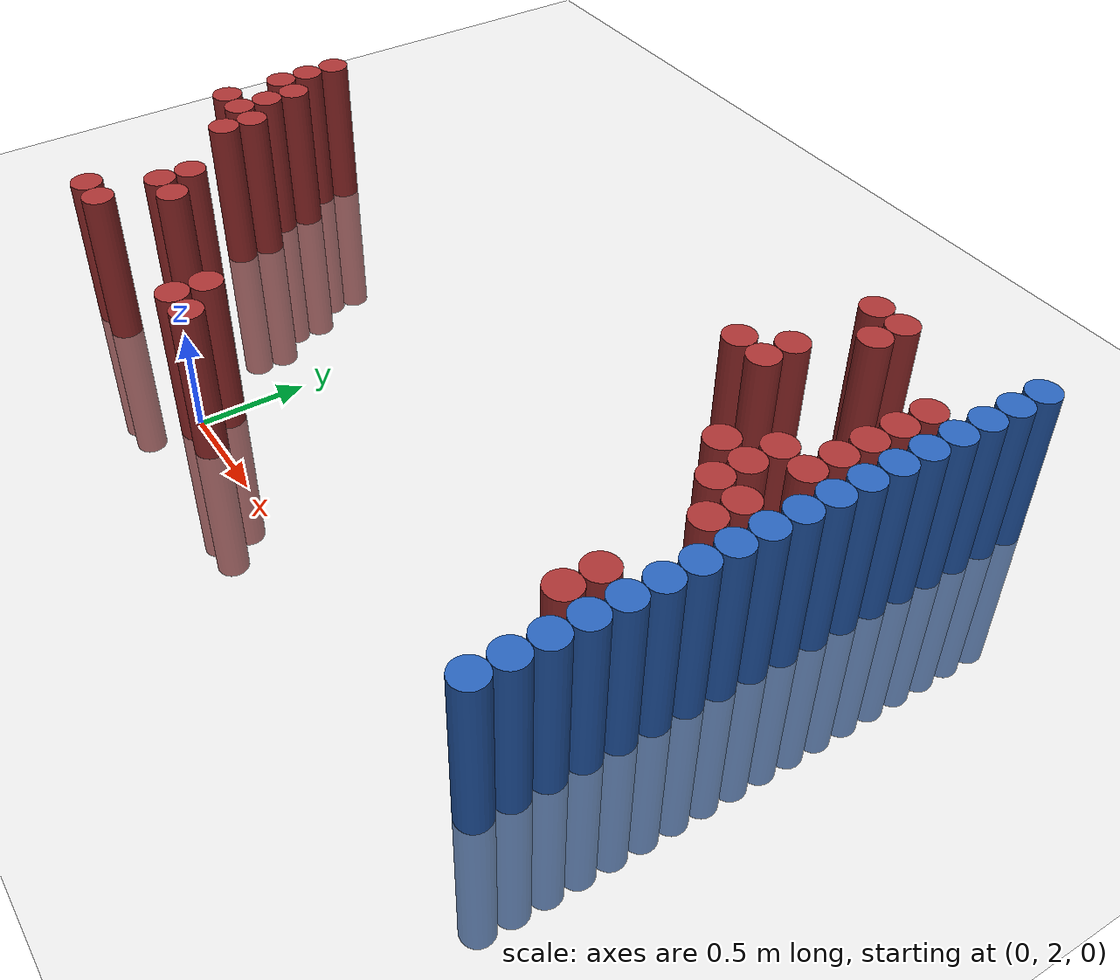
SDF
<sdf version="1.6">
 <world name="default">
  <model name="ground_plane">
   <static>1</static>
   <link name="link">
    <collision name="collision">
     <geometry><plane><normal>0 0 1</normal><size>100 100</size></plane></geometry>
     <surface><friction><ode><mu>100</mu><mu2>50</mu2></ode></friction></surface>
    </collision>
    <visual name="visual">
     <cast_shadows>0</cast_shadows>
     <geometry><plane><normal>0 0 1</normal><size>100 100</size></plane></geometry>
     <material>
      <script><uri>file://media/materials/scripts/gazebo.material</uri><name>Gazebo/Grey</name></script>
     </material>
    </visual>
   </link>
  </model>
  <model name="unit_cylinder_152">
   <static>1</static>
   <pose>-1.475000 2.875000 0.000000 0.000000 0.000000 0.000000</pose>
   <link name="link">
    <inertial>
     <mass>1</mass>
     <inertia><ixx>0.145833</ixx><ixy>0</ixy><ixz>0</ixz><iyy>0.145833</iyy><iyz>0</iyz><izz>0.125</izz></inertia>
    </inertial>
    <collision name="collision">
     <geometry><cylinder><radius>0.075000</radius><length>1.5</length></cylinder></geometry>
    </collision>
    <visual name="visual">
     <geometry><cylinder><radius>0.075000</radius><length>1.5</length></cylinder></geometry>
     <material>
      <ambient>0.648000 0.192000 0.192000 1</ambient>
      <diffuse>0.648000 0.192000 0.192000 1</diffuse>
     </material>
     <material>
      <script><name>Gazebo/Grey</name><uri>file://media/materials/scripts/gazebo.material</uri></script>
     </material>
    </visual>
   </link>
  </model>
  <model name="unit_cylinder_153">
   <static>1</static>
   <pose>-1.475000 3.175000 0.000000 0.000000 0.000000 0.000000</pose>
   <link name="link">
    <inertial>
     <mass>1</mass>
     <inertia><ixx>0.145833</ixx><ixy>0</ixy><ixz>0</ixz><iyy>0.145833</iyy><iyz>0</iyz><izz>0.125</izz></inertia>
    </inertial>
    <collision name="collision">
     <geometry><cylinder><radius>0.075000</radius><length>1.5</length></cylinder></geometry>
    </collision>
    <visual name="visual">
     <geometry><cylinder><radius>0.075000</radius><length>1.5</length></cylinder></geometry>
     <material>
      <ambient>0.648000 0.192000 0.192000 1</ambient>
      <diffuse>0.648000 0.192000 0.192000 1</diffuse>
     </material>
     <material>
      <script><name>Gazebo/Grey</name><uri>file://media/materials/scripts/gazebo.material</uri></script>
     </material>
    </visual>
   </link>
  </model>
  <model name="unit_cylinder_154">
   <static>1</static>
   <pose>-1.475000 3.325000 0.000000 0.000000 0.000000 0.000000</pose>
   <link name="link">
    <inertial>
     <mass>1</mass>
     <inertia><ixx>0.145833</ixx><ixy>0</ixy><ixz>0</ixz><iyy>0.145833</iyy><iyz>0</iyz><izz>0.125</izz></inertia>
    </inertial>
    <collision name="collision">
     <geometry><cylinder><radius>0.075000</radius><length>1.5</length></cylinder></geometry>
    </collision>
    <visual name="visual">
     <geometry><cylinder><radius>0.075000</radius><length>1.5</length></cylinder></geometry>
     <material>
      <ambient>0.648000 0.192000 0.192000 1</ambient>
      <diffuse>0.648000 0.192000 0.192000 1</diffuse>
     </material>
     <material>
      <script><name>Gazebo/Grey</name><uri>file://media/materials/scripts/gazebo.material</uri></script>
     </material>
    </visual>
   </link>
  </model>
  <model name="unit_cylinder_155">
   <static>1</static>
   <pose>-1.475000 3.475000 0.000000 0.000000 0.000000 0.000000</pose>
   <link name="link">
    <inertial>
     <mass>1</mass>
     <inertia><ixx>0.145833</ixx><ixy>0</ixy><ixz>0</ixz><iyy>0.145833</iyy><iyz>0</iyz><izz>0.125</izz></inertia>
    </inertial>
    <collision name="collision">
     <geometry><cylinder><radius>0.075000</radius><length>1.5</length></cylinder></geometry>
    </collision>
    <visual name="visual">
     <geometry><cylinder><radius>0.075000</radius><length>1.5</length></cylinder></geometry>
     <material>
      <ambient>0.648000 0.192000 0.192000 1</ambient>
      <diffuse>0.648000 0.192000 0.192000 1</diffuse>
     </material>
     <material>
      <script><name>Gazebo/Grey</name><uri>file://media/materials/scripts/gazebo.material</uri></script>
     </material>
    </visual>
   </link>
  </model>
  <model name="unit_cylinder_158">
   <static>1</static>
   <pose>-1.325000 2.875000 0.000000 0.000000 0.000000 0.000000</pose>
   <link name="link">
    <inertial>
     <mass>1</mass>
     <inertia><ixx>0.145833</ixx><ixy>0</ixy><ixz>0</ixz><iyy>0.145833</iyy><iyz>0</iyz><izz>0.125</izz></inertia>
    </inertial>
    <collision name="collision">
     <geometry><cylinder><radius>0.075000</radius><length>1.5</length></cylinder></geometry>
    </collision>
    <visual name="visual">
     <geometry><cylinder><radius>0.075000</radius><length>1.5</length></cylinder></geometry>
     <material>
      <ambient>0.648000 0.192000 0.192000 1</ambient>
      <diffuse>0.648000 0.192000 0.192000 1</diffuse>
     </material>
     <material>
      <script><name>Gazebo/Grey</name><uri>file://media/materials/scripts/gazebo.material</uri></script>
     </material>
    </visual>
   </link>
  </model>
  <model name="unit_cylinder_159">
   <static>1</static>
   <pose>-1.325000 3.025000 0.000000 0.000000 0.000000 0.000000</pose>
   <link name="link">
    <inertial>
     <mass>1</mass>
     <inertia><ixx>0.145833</ixx><ixy>0</ixy><ixz>0</ixz><iyy>0.145833</iyy><iyz>0</iyz><izz>0.125</izz></inertia>
    </inertial>
    <collision name="collision">
     <geometry><cylinder><radius>0.075000</radius><length>1.5</length></cylinder></geometry>
    </collision>
    <visual name="visual">
     <geometry><cylinder><radius>0.075000</radius><length>1.5</length></cylinder></geometry>
     <material>
      <ambient>0.648000 0.192000 0.192000 1</ambient>
      <diffuse>0.648000 0.192000 0.192000 1</diffuse>
     </material>
     <material>
      <script><name>Gazebo/Grey</name><uri>file://media/materials/scripts/gazebo.material</uri></script>
     </material>
    </visual>
   </link>
  </model>
  <model name="unit_cylinder_160">
   <static>1</static>
   <pose>-1.325000 3.175000 0.000000 0.000000 0.000000 0.000000</pose>
   <link name="link">
    <inertial>
     <mass>1</mass>
     <inertia><ixx>0.145833</ixx><ixy>0</ixy><ixz>0</ixz><iyy>0.145833</iyy><iyz>0</iyz><izz>0.125</izz></inertia>
    </inertial>
    <collision name="collision">
     <geometry><cylinder><radius>0.075000</radius><length>1.5</length></cylinder></geometry>
    </collision>
    <visual name="visual">
     <geometry><cylinder><radius>0.075000</radius><length>1.5</length></cylinder></geometry>
     <material>
      <ambient>0.648000 0.192000 0.192000 1</ambient>
      <diffuse>0.648000 0.192000 0.192000 1</diffuse>
     </material>
     <material>
      <script><name>Gazebo/Grey</name><uri>file://media/materials/scripts/gazebo.material</uri></script>
     </material>
    </visual>
   </link>
  </model>
  <model name="unit_cylinder_164">
   <static>1</static>
   <pose>-1.175000 2.725000 0.000000 0.000000 0.000000 0.000000</pose>
   <link name="link">
    <inertial>
     <mass>1</mass>
     <inertia><ixx>0.145833</ixx><ixy>0</ixy><ixz>0</ixz><iyy>0.145833</iyy><iyz>0</iyz><izz>0.125</izz></inertia>
    </inertial>
    <collision name="collision">
     <geometry><cylinder><radius>0.075000</radius><length>1.5</length></cylinder></geometry>
    </collision>
    <visual name="visual">
     <geometry><cylinder><radius>0.075000</radius><length>1.5</length></cylinder></geometry>
     <material>
      <ambient>0.648000 0.192000 0.192000 1</ambient>
      <diffuse>0.648000 0.192000 0.192000 1</diffuse>
     </material>
     <material>
      <script><name>Gazebo/Grey</name><uri>file://media/materials/scripts/gazebo.material</uri></script>
     </material>
    </visual>
   </link>
  </model>
  <model name="unit_cylinder_165">
   <static>1</static>
   <pose>-1.175000 2.875000 0.000000 0.000000 0.000000 0.000000</pose>
   <link name="link">
    <inertial>
     <mass>1</mass>
     <inertia><ixx>0.145833</ixx><ixy>0</ixy><ixz>0</ixz><iyy>0.145833</iyy><iyz>0</iyz><izz>0.125</izz></inertia>
    </inertial>
    <collision name="collision">
     <geometry><cylinder><radius>0.075000</radius><length>1.5</length></cylinder></geometry>
    </collision>
    <visual name="visual">
     <geometry><cylinder><radius>0.075000</radius><length>1.5</length></cylinder></geometry>
     <material>
      <ambient>0.648000 0.192000 0.192000 1</ambient>
      <diffuse>0.648000 0.192000 0.192000 1</diffuse>
     </material>
     <material>
      <script><name>Gazebo/Grey</name><uri>file://media/materials/scripts/gazebo.material</uri></script>
     </material>
    </visual>
   </link>
  </model>
  <model name="unit_cylinder_166">
   <static>1</static>
   <pose>-1.025000 1.975000 0.000000 0.000000 0.000000 0.000000</pose>
   <link name="link">
    <inertial>
     <mass>1</mass>
     <inertia><ixx>0.145833</ixx><ixy>0</ixy><ixz>0</ixz><iyy>0.145833</iyy><iyz>0</iyz><izz>0.125</izz></inertia>
    </inertial>
    <collision name="collision">
     <geometry><cylinder><radius>0.075000</radius><length>1.5</length></cylinder></geometry>
    </collision>
    <visual name="visual">
     <geometry><cylinder><radius>0.075000</radius><length>1.5</length></cylinder></geometry>
     <material>
      <ambient>0.648000 0.192000 0.192000 1</ambient>
      <diffuse>0.648000 0.192000 0.192000 1</diffuse>
     </material>
     <material>
      <script><name>Gazebo/Grey</name><uri>file://media/materials/scripts/gazebo.material</uri></script>
     </material>
    </visual>
   </link>
  </model>
  <model name="unit_cylinder_174">
   <static>1</static>
   <pose>-0.875000 1.975000 0.000000 0.000000 0.000000 0.000000</pose>
   <link name="link">
    <inertial>
     <mass>1</mass>
     <inertia><ixx>0.145833</ixx><ixy>0</ixy><ixz>0</ixz><iyy>0.145833</iyy><iyz>0</iyz><izz>0.125</izz></inertia>
    </inertial>
    <collision name="collision">
     <geometry><cylinder><radius>0.075000</radius><length>1.5</length></cylinder></geometry>
    </collision>
    <visual name="visual">
     <geometry><cylinder><radius>0.075000</radius><length>1.5</length></cylinder></geometry>
     <material>
      <ambient>0.648000 0.192000 0.192000 1</ambient>
      <diffuse>0.648000 0.192000 0.192000 1</diffuse>
     </material>
     <material>
      <script><name>Gazebo/Grey</name><uri>file://media/materials/scripts/gazebo.material</uri></script>
     </material>
    </visual>
   </link>
  </model>
  <model name="unit_cylinder_175">
   <static>1</static>
   <pose>-0.875000 2.275000 0.000000 0.000000 0.000000 0.000000</pose>
   <link name="link">
    <inertial>
     <mass>1</mass>
     <inertia><ixx>0.145833</ixx><ixy>0</ixy><ixz>0</ixz><iyy>0.145833</iyy><iyz>0</iyz><izz>0.125</izz></inertia>
    </inertial>
    <collision name="collision">
     <geometry><cylinder><radius>0.075000</radius><length>1.5</length></cylinder></geometry>
    </collision>
    <visual name="visual">
     <geometry><cylinder><radius>0.075000</radius><length>1.5</length></cylinder></geometry>
     <material>
      <ambient>0.648000 0.192000 0.192000 1</ambient>
      <diffuse>0.648000 0.192000 0.192000 1</diffuse>
     </material>
     <material>
      <script><name>Gazebo/Grey</name><uri>file://media/materials/scripts/gazebo.material</uri></script>
     </material>
    </visual>
   </link>
  </model>
  <model name="unit_cylinder_176">
   <static>1</static>
   <pose>-0.875000 2.425000 0.000000 0.000000 0.000000 0.000000</pose>
   <link name="link">
    <inertial>
     <mass>1</mass>
     <inertia><ixx>0.145833</ixx><ixy>0</ixy><ixz>0</ixz><iyy>0.145833</iyy><iyz>0</iyz><izz>0.125</izz></inertia>
    </inertial>
    <collision name="collision">
     <geometry><cylinder><radius>0.075000</radius><length>1.5</length></cylinder></geometry>
    </collision>
    <visual name="visual">
     <geometry><cylinder><radius>0.075000</radius><length>1.5</length></cylinder></geometry>
     <material>
      <ambient>0.648000 0.192000 0.192000 1</ambient>
      <diffuse>0.648000 0.192000 0.192000 1</diffuse>
     </material>
     <material>
      <script><name>Gazebo/Grey</name><uri>file://media/materials/scripts/gazebo.material</uri></script>
     </material>
    </visual>
   </link>
  </model>
  <model name="unit_cylinder_184">
   <static>1</static>
   <pose>-0.725000 2.275000 0.000000 0.000000 0.000000 0.000000</pose>
   <link name="link">
    <inertial>
     <mass>1</mass>
     <inertia><ixx>0.145833</ixx><ixy>0</ixy><ixz>0</ixz><iyy>0.145833</iyy><iyz>0</iyz><izz>0.125</izz></inertia>
    </inertial>
    <collision name="collision">
     <geometry><cylinder><radius>0.075000</radius><length>1.5</length></cylinder></geometry>
    </collision>
    <visual name="visual">
     <geometry><cylinder><radius>0.075000</radius><length>1.5</length></cylinder></geometry>
     <material>
      <ambient>0.648000 0.192000 0.192000 1</ambient>
      <diffuse>0.648000 0.192000 0.192000 1</diffuse>
     </material>
     <material>
      <script><name>Gazebo/Grey</name><uri>file://media/materials/scripts/gazebo.material</uri></script>
     </material>
    </visual>
   </link>
  </model>
  <model name="unit_cylinder_190">
   <static>1</static>
   <pose>0.025000 1.975000 0.000000 0.000000 0.000000 0.000000</pose>
   <link name="link">
    <inertial>
     <mass>1</mass>
     <inertia><ixx>0.145833</ixx><ixy>0</ixy><ixz>0</ixz><iyy>0.145833</iyy><iyz>0</iyz><izz>0.125</izz></inertia>
    </inertial>
    <collision name="collision">
     <geometry><cylinder><radius>0.075000</radius><length>1.5</length></cylinder></geometry>
    </collision>
    <visual name="visual">
     <geometry><cylinder><radius>0.075000</radius><length>1.5</length></cylinder></geometry>
     <material>
      <ambient>0.648000 0.192000 0.192000 1</ambient>
      <diffuse>0.648000 0.192000 0.192000 1</diffuse>
     </material>
     <material>
      <script><name>Gazebo/Grey</name><uri>file://media/materials/scripts/gazebo.material</uri></script>
     </material>
    </visual>
   </link>
  </model>
  <model name="unit_cylinder_191">
   <static>1</static>
   <pose>0.025000 2.125000 0.000000 0.000000 0.000000 0.000000</pose>
   <link name="link">
    <inertial>
     <mass>1</mass>
     <inertia><ixx>0.145833</ixx><ixy>0</ixy><ixz>0</ixz><iyy>0.145833</iyy><iyz>0</iyz><izz>0.125</izz></inertia>
    </inertial>
    <collision name="collision">
     <geometry><cylinder><radius>0.075000</radius><length>1.5</length></cylinder></geometry>
    </collision>
    <visual name="visual">
     <geometry><cylinder><radius>0.075000</radius><length>1.5</length></cylinder></geometry>
     <material>
      <ambient>0.648000 0.192000 0.192000 1</ambient>
      <diffuse>0.648000 0.192000 0.192000 1</diffuse>
     </material>
     <material>
      <script><name>Gazebo/Grey</name><uri>file://media/materials/scripts/gazebo.material</uri></script>
     </material>
    </visual>
   </link>
  </model>
  <model name="unit_cylinder_194">
   <static>1</static>
   <pose>0.175000 1.975000 0.000000 0.000000 0.000000 0.000000</pose>
   <link name="link">
    <inertial>
     <mass>1</mass>
     <inertia><ixx>0.145833</ixx><ixy>0</ixy><ixz>0</ixz><iyy>0.145833</iyy><iyz>0</iyz><izz>0.125</izz></inertia>
    </inertial>
    <collision name="collision">
     <geometry><cylinder><radius>0.075000</radius><length>1.5</length></cylinder></geometry>
    </collision>
    <visual name="visual">
     <geometry><cylinder><radius>0.075000</radius><length>1.5</length></cylinder></geometry>
     <material>
      <ambient>0.648000 0.192000 0.192000 1</ambient>
      <diffuse>0.648000 0.192000 0.192000 1</diffuse>
     </material>
     <material>
      <script><name>Gazebo/Grey</name><uri>file://media/materials/scripts/gazebo.material</uri></script>
     </material>
    </visual>
   </link>
  </model>
  <model name="unit_cylinder_206">
   <static>1</static>
   <pose>1.525000 3.775000 0.000000 0.000000 0.000000 0.000000</pose>
   <link name="link">
    <inertial>
     <mass>1</mass>
     <inertia><ixx>0.145833</ixx><ixy>0</ixy><ixz>0</ixz><iyy>0.145833</iyy><iyz>0</iyz><izz>0.125</izz></inertia>
    </inertial>
    <collision name="collision">
     <geometry><cylinder><radius>0.075000</radius><length>1.5</length></cylinder></geometry>
    </collision>
    <visual name="visual">
     <geometry><cylinder><radius>0.075000</radius><length>1.5</length></cylinder></geometry>
     <material>
      <ambient>0.648000 0.192000 0.192000 1</ambient>
      <diffuse>0.648000 0.192000 0.192000 1</diffuse>
     </material>
     <material>
      <script><name>Gazebo/Grey</name><uri>file://media/materials/scripts/gazebo.material</uri></script>
     </material>
    </visual>
   </link>
  </model>
  <model name="unit_cylinder_207">
   <static>1</static>
   <pose>1.675000 3.775000 0.000000 0.000000 0.000000 0.000000</pose>
   <link name="link">
    <inertial>
     <mass>1</mass>
     <inertia><ixx>0.145833</ixx><ixy>0</ixy><ixz>0</ixz><iyy>0.145833</iyy><iyz>0</iyz><izz>0.125</izz></inertia>
    </inertial>
    <collision name="collision">
     <geometry><cylinder><radius>0.075000</radius><length>1.5</length></cylinder></geometry>
    </collision>
    <visual name="visual">
     <geometry><cylinder><radius>0.075000</radius><length>1.5</length></cylinder></geometry>
     <material>
      <ambient>0.648000 0.192000 0.192000 1</ambient>
      <diffuse>0.648000 0.192000 0.192000 1</diffuse>
     </material>
     <material>
      <script><name>Gazebo/Grey</name><uri>file://media/materials/scripts/gazebo.material</uri></script>
     </material>
    </visual>
   </link>
  </model>
  <model name="unit_cylinder_208">
   <static>1</static>
   <pose>1.675000 3.925000 0.000000 0.000000 0.000000 0.000000</pose>
   <link name="link">
    <inertial>
     <mass>1</mass>
     <inertia><ixx>0.145833</ixx><ixy>0</ixy><ixz>0</ixz><iyy>0.145833</iyy><iyz>0</iyz><izz>0.125</izz></inertia>
    </inertial>
    <collision name="collision">
     <geometry><cylinder><radius>0.075000</radius><length>1.5</length></cylinder></geometry>
    </collision>
    <visual name="visual">
     <geometry><cylinder><radius>0.075000</radius><length>1.5</length></cylinder></geometry>
     <material>
      <ambient>0.648000 0.192000 0.192000 1</ambient>
      <diffuse>0.648000 0.192000 0.192000 1</diffuse>
     </material>
     <material>
      <script><name>Gazebo/Grey</name><uri>file://media/materials/scripts/gazebo.material</uri></script>
     </material>
    </visual>
   </link>
  </model>
  <model name="unit_cylinder_209">
   <static>1</static>
   <pose>1.675000 4.375000 0.000000 0.000000 0.000000 0.000000</pose>
   <link name="link">
    <inertial>
     <mass>1</mass>
     <inertia><ixx>0.145833</ixx><ixy>0</ixy><ixz>0</ixz><iyy>0.145833</iyy><iyz>0</iyz><izz>0.125</izz></inertia>
    </inertial>
    <collision name="collision">
     <geometry><cylinder><radius>0.075000</radius><length>1.5</length></cylinder></geometry>
    </collision>
    <visual name="visual">
     <geometry><cylinder><radius>0.075000</radius><length>1.5</length></cylinder></geometry>
     <material>
      <ambient>0.648000 0.192000 0.192000 1</ambient>
      <diffuse>0.648000 0.192000 0.192000 1</diffuse>
     </material>
     <material>
      <script><name>Gazebo/Grey</name><uri>file://media/materials/scripts/gazebo.material</uri></script>
     </material>
    </visual>
   </link>
  </model>
  <model name="unit_cylinder_210">
   <static>1</static>
   <pose>1.825000 4.225000 0.000000 0.000000 0.000000 0.000000</pose>
   <link name="link">
    <inertial>
     <mass>1</mass>
     <inertia><ixx>0.145833</ixx><ixy>0</ixy><ixz>0</ixz><iyy>0.145833</iyy><iyz>0</iyz><izz>0.125</izz></inertia>
    </inertial>
    <collision name="collision">
     <geometry><cylinder><radius>0.075000</radius><length>1.5</length></cylinder></geometry>
    </collision>
    <visual name="visual">
     <geometry><cylinder><radius>0.075000</radius><length>1.5</length></cylinder></geometry>
     <material>
      <ambient>0.648000 0.192000 0.192000 1</ambient>
      <diffuse>0.648000 0.192000 0.192000 1</diffuse>
     </material>
     <material>
      <script><name>Gazebo/Grey</name><uri>file://media/materials/scripts/gazebo.material</uri></script>
     </material>
    </visual>
   </link>
  </model>
  <model name="unit_cylinder_211">
   <static>1</static>
   <pose>1.825000 4.375000 0.000000 0.000000 0.000000 0.000000</pose>
   <link name="link">
    <inertial>
     <mass>1</mass>
     <inertia><ixx>0.145833</ixx><ixy>0</ixy><ixz>0</ixz><iyy>0.145833</iyy><iyz>0</iyz><izz>0.125</izz></inertia>
    </inertial>
    <collision name="collision">
     <geometry><cylinder><radius>0.075000</radius><length>1.5</length></cylinder></geometry>
    </collision>
    <visual name="visual">
     <geometry><cylinder><radius>0.075000</radius><length>1.5</length></cylinder></geometry>
     <material>
      <ambient>0.648000 0.192000 0.192000 1</ambient>
      <diffuse>0.648000 0.192000 0.192000 1</diffuse>
     </material>
     <material>
      <script><name>Gazebo/Grey</name><uri>file://media/materials/scripts/gazebo.material</uri></script>
     </material>
    </visual>
   </link>
  </model>
  <model name="unit_cylinder_214">
   <static>1</static>
   <pose>1.975000 3.325000 0.000000 0.000000 0.000000 0.000000</pose>
   <link name="link">
    <inertial>
     <mass>1</mass>
     <inertia><ixx>0.145833</ixx><ixy>0</ixy><ixz>0</ixz><iyy>0.145833</iyy><iyz>0</iyz><izz>0.125</izz></inertia>
    </inertial>
    <collision name="collision">
     <geometry><cylinder><radius>0.075000</radius><length>1.5</length></cylinder></geometry>
    </collision>
    <visual name="visual">
     <geometry><cylinder><radius>0.075000</radius><length>1.5</length></cylinder></geometry>
     <material>
      <ambient>0.648000 0.192000 0.192000 1</ambient>
      <diffuse>0.648000 0.192000 0.192000 1</diffuse>
     </material>
     <material>
      <script><name>Gazebo/Grey</name><uri>file://media/materials/scripts/gazebo.material</uri></script>
     </material>
    </visual>
   </link>
  </model>
  <model name="unit_cylinder_218">
   <static>1</static>
   <pose>2.125000 3.175000 0.000000 0.000000 0.000000 0.000000</pose>
   <link name="link">
    <inertial>
     <mass>1</mass>
     <inertia><ixx>0.145833</ixx><ixy>0</ixy><ixz>0</ixz><iyy>0.145833</iyy><iyz>0</iyz><izz>0.125</izz></inertia>
    </inertial>
    <collision name="collision">
     <geometry><cylinder><radius>0.075000</radius><length>1.5</length></cylinder></geometry>
    </collision>
    <visual name="visual">
     <geometry><cylinder><radius>0.075000</radius><length>1.5</length></cylinder></geometry>
     <material>
      <ambient>0.648000 0.192000 0.192000 1</ambient>
      <diffuse>0.648000 0.192000 0.192000 1</diffuse>
     </material>
     <material>
      <script><name>Gazebo/Grey</name><uri>file://media/materials/scripts/gazebo.material</uri></script>
     </material>
    </visual>
   </link>
  </model>
  <model name="unit_cylinder_219">
   <static>1</static>
   <pose>2.125000 3.325000 0.000000 0.000000 0.000000 0.000000</pose>
   <link name="link">
    <inertial>
     <mass>1</mass>
     <inertia><ixx>0.145833</ixx><ixy>0</ixy><ixz>0</ixz><iyy>0.145833</iyy><iyz>0</iyz><izz>0.125</izz></inertia>
    </inertial>
    <collision name="collision">
     <geometry><cylinder><radius>0.075000</radius><length>1.5</length></cylinder></geometry>
    </collision>
    <visual name="visual">
     <geometry><cylinder><radius>0.075000</radius><length>1.5</length></cylinder></geometry>
     <material>
      <ambient>0.648000 0.192000 0.192000 1</ambient>
      <diffuse>0.648000 0.192000 0.192000 1</diffuse>
     </material>
     <material>
      <script><name>Gazebo/Grey</name><uri>file://media/materials/scripts/gazebo.material</uri></script>
     </material>
    </visual>
   </link>
  </model>
  <model name="unit_cylinder_220">
   <static>1</static>
   <pose>2.125000 3.475000 0.000000 0.000000 0.000000 0.000000</pose>
   <link name="link">
    <inertial>
     <mass>1</mass>
     <inertia><ixx>0.145833</ixx><ixy>0</ixy><ixz>0</ixz><iyy>0.145833</iyy><iyz>0</iyz><izz>0.125</izz></inertia>
    </inertial>
    <collision name="collision">
     <geometry><cylinder><radius>0.075000</radius><length>1.5</length></cylinder></geometry>
    </collision>
    <visual name="visual">
     <geometry><cylinder><radius>0.075000</radius><length>1.5</length></cylinder></geometry>
     <material>
      <ambient>0.648000 0.192000 0.192000 1</ambient>
      <diffuse>0.648000 0.192000 0.192000 1</diffuse>
     </material>
     <material>
      <script><name>Gazebo/Grey</name><uri>file://media/materials/scripts/gazebo.material</uri></script>
     </material>
    </visual>
   </link>
  </model>
  <model name="unit_cylinder_228">
   <static>1</static>
   <pose>2.275000 2.425000 0.000000 0.000000 0.000000 0.000000</pose>
   <link name="link">
    <inertial>
     <mass>1</mass>
     <inertia><ixx>0.145833</ixx><ixy>0</ixy><ixz>0</ixz><iyy>0.145833</iyy><iyz>0</iyz><izz>0.125</izz></inertia>
    </inertial>
    <collision name="collision">
     <geometry><cylinder><radius>0.075000</radius><length>1.5</length></cylinder></geometry>
    </collision>
    <visual name="visual">
     <geometry><cylinder><radius>0.075000</radius><length>1.5</length></cylinder></geometry>
     <material>
      <ambient>0.648000 0.192000 0.192000 1</ambient>
      <diffuse>0.648000 0.192000 0.192000 1</diffuse>
     </material>
     <material>
      <script><name>Gazebo/Grey</name><uri>file://media/materials/scripts/gazebo.material</uri></script>
     </material>
    </visual>
   </link>
  </model>
  <model name="unit_cylinder_229">
   <static>1</static>
   <pose>2.275000 2.575000 0.000000 0.000000 0.000000 0.000000</pose>
   <link name="link">
    <inertial>
     <mass>1</mass>
     <inertia><ixx>0.145833</ixx><ixy>0</ixy><ixz>0</ixz><iyy>0.145833</iyy><iyz>0</iyz><izz>0.125</izz></inertia>
    </inertial>
    <collision name="collision">
     <geometry><cylinder><radius>0.075000</radius><length>1.5</length></cylinder></geometry>
    </collision>
    <visual name="visual">
     <geometry><cylinder><radius>0.075000</radius><length>1.5</length></cylinder></geometry>
     <material>
      <ambient>0.648000 0.192000 0.192000 1</ambient>
      <diffuse>0.648000 0.192000 0.192000 1</diffuse>
     </material>
     <material>
      <script><name>Gazebo/Grey</name><uri>file://media/materials/scripts/gazebo.material</uri></script>
     </material>
    </visual>
   </link>
  </model>
  <model name="unit_cylinder_230">
   <static>1</static>
   <pose>2.275000 3.025000 0.000000 0.000000 0.000000 0.000000</pose>
   <link name="link">
    <inertial>
     <mass>1</mass>
     <inertia><ixx>0.145833</ixx><ixy>0</ixy><ixz>0</ixz><iyy>0.145833</iyy><iyz>0</iyz><izz>0.125</izz></inertia>
    </inertial>
    <collision name="collision">
     <geometry><cylinder><radius>0.075000</radius><length>1.5</length></cylinder></geometry>
    </collision>
    <visual name="visual">
     <geometry><cylinder><radius>0.075000</radius><length>1.5</length></cylinder></geometry>
     <material>
      <ambient>0.648000 0.192000 0.192000 1</ambient>
      <diffuse>0.648000 0.192000 0.192000 1</diffuse>
     </material>
     <material>
      <script><name>Gazebo/Grey</name><uri>file://media/materials/scripts/gazebo.material</uri></script>
     </material>
    </visual>
   </link>
  </model>
  <model name="unit_cylinder_231">
   <static>1</static>
   <pose>2.275000 3.175000 0.000000 0.000000 0.000000 0.000000</pose>
   <link name="link">
    <inertial>
     <mass>1</mass>
     <inertia><ixx>0.145833</ixx><ixy>0</ixy><ixz>0</ixz><iyy>0.145833</iyy><iyz>0</iyz><izz>0.125</izz></inertia>
    </inertial>
    <collision name="collision">
     <geometry><cylinder><radius>0.075000</radius><length>1.5</length></cylinder></geometry>
    </collision>
    <visual name="visual">
     <geometry><cylinder><radius>0.075000</radius><length>1.5</length></cylinder></geometry>
     <material>
      <ambient>0.648000 0.192000 0.192000 1</ambient>
      <diffuse>0.648000 0.192000 0.192000 1</diffuse>
     </material>
     <material>
      <script><name>Gazebo/Grey</name><uri>file://media/materials/scripts/gazebo.material</uri></script>
     </material>
    </visual>
   </link>
  </model>
  <model name="unit_cylinder_232">
   <static>1</static>
   <pose>2.275000 3.475000 0.000000 0.000000 0.000000 0.000000</pose>
   <link name="link">
    <inertial>
     <mass>1</mass>
     <inertia><ixx>0.145833</ixx><ixy>0</ixy><ixz>0</ixz><iyy>0.145833</iyy><iyz>0</iyz><izz>0.125</izz></inertia>
    </inertial>
    <collision name="collision">
     <geometry><cylinder><radius>0.075000</radius><length>1.5</length></cylinder></geometry>
    </collision>
    <visual name="visual">
     <geometry><cylinder><radius>0.075000</radius><length>1.5</length></cylinder></geometry>
     <material>
      <ambient>0.648000 0.192000 0.192000 1</ambient>
      <diffuse>0.648000 0.192000 0.192000 1</diffuse>
     </material>
     <material>
      <script><name>Gazebo/Grey</name><uri>file://media/materials/scripts/gazebo.material</uri></script>
     </material>
    </visual>
   </link>
  </model>
  <model name="unit_cylinder_233">
   <static>1</static>
   <pose>2.275000 3.625000 0.000000 0.000000 0.000000 0.000000</pose>
   <link name="link">
    <inertial>
     <mass>1</mass>
     <inertia><ixx>0.145833</ixx><ixy>0</ixy><ixz>0</ixz><iyy>0.145833</iyy><iyz>0</iyz><izz>0.125</izz></inertia>
    </inertial>
    <collision name="collision">
     <geometry><cylinder><radius>0.075000</radius><length>1.5</length></cylinder></geometry>
    </collision>
    <visual name="visual">
     <geometry><cylinder><radius>0.075000</radius><length>1.5</length></cylinder></geometry>
     <material>
      <ambient>0.648000 0.192000 0.192000 1</ambient>
      <diffuse>0.648000 0.192000 0.192000 1</diffuse>
     </material>
     <material>
      <script><name>Gazebo/Grey</name><uri>file://media/materials/scripts/gazebo.material</uri></script>
     </material>
    </visual>
   </link>
  </model>
  <model name="unit_cylinder_234">
   <static>1</static>
   <pose>2.275000 3.775000 0.000000 0.000000 0.000000 0.000000</pose>
   <link name="link">
    <inertial>
     <mass>1</mass>
     <inertia><ixx>0.145833</ixx><ixy>0</ixy><ixz>0</ixz><iyy>0.145833</iyy><iyz>0</iyz><izz>0.125</izz></inertia>
    </inertial>
    <collision name="collision">
     <geometry><cylinder><radius>0.075000</radius><length>1.5</length></cylinder></geometry>
    </collision>
    <visual name="visual">
     <geometry><cylinder><radius>0.075000</radius><length>1.5</length></cylinder></geometry>
     <material>
      <ambient>0.648000 0.192000 0.192000 1</ambient>
      <diffuse>0.648000 0.192000 0.192000 1</diffuse>
     </material>
     <material>
      <script><name>Gazebo/Grey</name><uri>file://media/materials/scripts/gazebo.material</uri></script>
     </material>
    </visual>
   </link>
  </model>
  <model name="unit_cylinder_235">
   <static>1</static>
   <pose>2.275000 3.925000 0.000000 0.000000 0.000000 0.000000</pose>
   <link name="link">
    <inertial>
     <mass>1</mass>
     <inertia><ixx>0.145833</ixx><ixy>0</ixy><ixz>0</ixz><iyy>0.145833</iyy><iyz>0</iyz><izz>0.125</izz></inertia>
    </inertial>
    <collision name="collision">
     <geometry><cylinder><radius>0.075000</radius><length>1.5</length></cylinder></geometry>
    </collision>
    <visual name="visual">
     <geometry><cylinder><radius>0.075000</radius><length>1.5</length></cylinder></geometry>
     <material>
      <ambient>0.648000 0.192000 0.192000 1</ambient>
      <diffuse>0.648000 0.192000 0.192000 1</diffuse>
     </material>
     <material>
      <script><name>Gazebo/Grey</name><uri>file://media/materials/scripts/gazebo.material</uri></script>
     </material>
    </visual>
   </link>
  </model>
  <model name="unit_cylinder_236">
   <static>1</static>
   <pose>2.275000 4.075000 0.000000 0.000000 0.000000 0.000000</pose>
   <link name="link">
    <inertial>
     <mass>1</mass>
     <inertia><ixx>0.145833</ixx><ixy>0</ixy><ixz>0</ixz><iyy>0.145833</iyy><iyz>0</iyz><izz>0.125</izz></inertia>
    </inertial>
    <collision name="collision">
     <geometry><cylinder><radius>0.075000</radius><length>1.5</length></cylinder></geometry>
    </collision>
    <visual name="visual">
     <geometry><cylinder><radius>0.075000</radius><length>1.5</length></cylinder></geometry>
     <material>
      <ambient>0.648000 0.192000 0.192000 1</ambient>
      <diffuse>0.648000 0.192000 0.192000 1</diffuse>
     </material>
     <material>
      <script><name>Gazebo/Grey</name><uri>file://media/materials/scripts/gazebo.material</uri></script>
     </material>
    </visual>
   </link>
  </model>
  <model name="unit_cylinder_249">
   <static>1</static>
   <pose>2.425000 1.975000 0.000000 0.000000 0.000000 0.000000</pose>
   <link name="link">
    <inertial>
     <mass>1</mass>
     <inertia><ixx>0.145833</ixx><ixy>0</ixy><ixz>0</ixz><iyy>0.145833</iyy><iyz>0</iyz><izz>0.125</izz></inertia>
    </inertial>
    <collision name="collision">
     <geometry><cylinder><radius>0.075000</radius><length>1.5</length></cylinder></geometry>
    </collision>
    <visual name="visual">
     <geometry><cylinder><radius>0.075000</radius><length>1.5</length></cylinder></geometry>
     <material>
      <ambient>0.152000 0.379000 0.720000 1</ambient>
      <diffuse>0.152000 0.379000 0.720000 1</diffuse>
     </material>
     <material>
      <script><name>Gazebo/Grey</name><uri>file://media/materials/scripts/gazebo.material</uri></script>
     </material>
    </visual>
   </link>
  </model>
  <model name="unit_cylinder_250">
   <static>1</static>
   <pose>2.425000 2.125000 0.000000 0.000000 0.000000 0.000000</pose>
   <link name="link">
    <inertial>
     <mass>1</mass>
     <inertia><ixx>0.145833</ixx><ixy>0</ixy><ixz>0</ixz><iyy>0.145833</iyy><iyz>0</iyz><izz>0.125</izz></inertia>
    </inertial>
    <collision name="collision">
     <geometry><cylinder><radius>0.075000</radius><length>1.5</length></cylinder></geometry>
    </collision>
    <visual name="visual">
     <geometry><cylinder><radius>0.075000</radius><length>1.5</length></cylinder></geometry>
     <material>
      <ambient>0.152000 0.379000 0.720000 1</ambient>
      <diffuse>0.152000 0.379000 0.720000 1</diffuse>
     </material>
     <material>
      <script><name>Gazebo/Grey</name><uri>file://media/materials/scripts/gazebo.material</uri></script>
     </material>
    </visual>
   </link>
  </model>
  <model name="unit_cylinder_251">
   <static>1</static>
   <pose>2.425000 2.275000 0.000000 0.000000 0.000000 0.000000</pose>
   <link name="link">
    <inertial>
     <mass>1</mass>
     <inertia><ixx>0.145833</ixx><ixy>0</ixy><ixz>0</ixz><iyy>0.145833</iyy><iyz>0</iyz><izz>0.125</izz></inertia>
    </inertial>
    <collision name="collision">
     <geometry><cylinder><radius>0.075000</radius><length>1.5</length></cylinder></geometry>
    </collision>
    <visual name="visual">
     <geometry><cylinder><radius>0.075000</radius><length>1.5</length></cylinder></geometry>
     <material>
      <ambient>0.152000 0.379000 0.720000 1</ambient>
      <diffuse>0.152000 0.379000 0.720000 1</diffuse>
     </material>
     <material>
      <script><name>Gazebo/Grey</name><uri>file://media/materials/scripts/gazebo.material</uri></script>
     </material>
    </visual>
   </link>
  </model>
  <model name="unit_cylinder_252">
   <static>1</static>
   <pose>2.425000 2.425000 0.000000 0.000000 0.000000 0.000000</pose>
   <link name="link">
    <inertial>
     <mass>1</mass>
     <inertia><ixx>0.145833</ixx><ixy>0</ixy><ixz>0</ixz><iyy>0.145833</iyy><iyz>0</iyz><izz>0.125</izz></inertia>
    </inertial>
    <collision name="collision">
     <geometry><cylinder><radius>0.075000</radius><length>1.5</length></cylinder></geometry>
    </collision>
    <visual name="visual">
     <geometry><cylinder><radius>0.075000</radius><length>1.5</length></cylinder></geometry>
     <material>
      <ambient>0.152000 0.379000 0.720000 1</ambient>
      <diffuse>0.152000 0.379000 0.720000 1</diffuse>
     </material>
     <material>
      <script><name>Gazebo/Grey</name><uri>file://media/materials/scripts/gazebo.material</uri></script>
     </material>
    </visual>
   </link>
  </model>
  <model name="unit_cylinder_253">
   <static>1</static>
   <pose>2.425000 2.575000 0.000000 0.000000 0.000000 0.000000</pose>
   <link name="link">
    <inertial>
     <mass>1</mass>
     <inertia><ixx>0.145833</ixx><ixy>0</ixy><ixz>0</ixz><iyy>0.145833</iyy><iyz>0</iyz><izz>0.125</izz></inertia>
    </inertial>
    <collision name="collision">
     <geometry><cylinder><radius>0.075000</radius><length>1.5</length></cylinder></geometry>
    </collision>
    <visual name="visual">
     <geometry><cylinder><radius>0.075000</radius><length>1.5</length></cylinder></geometry>
     <material>
      <ambient>0.152000 0.379000 0.720000 1</ambient>
      <diffuse>0.152000 0.379000 0.720000 1</diffuse>
     </material>
     <material>
      <script><name>Gazebo/Grey</name><uri>file://media/materials/scripts/gazebo.material</uri></script>
     </material>
    </visual>
   </link>
  </model>
  <model name="unit_cylinder_254">
   <static>1</static>
   <pose>2.425000 2.725000 0.000000 0.000000 0.000000 0.000000</pose>
   <link name="link">
    <inertial>
     <mass>1</mass>
     <inertia><ixx>0.145833</ixx><ixy>0</ixy><ixz>0</ixz><iyy>0.145833</iyy><iyz>0</iyz><izz>0.125</izz></inertia>
    </inertial>
    <collision name="collision">
     <geometry><cylinder><radius>0.075000</radius><length>1.5</length></cylinder></geometry>
    </collision>
    <visual name="visual">
     <geometry><cylinder><radius>0.075000</radius><length>1.5</length></cylinder></geometry>
     <material>
      <ambient>0.152000 0.379000 0.720000 1</ambient>
      <diffuse>0.152000 0.379000 0.720000 1</diffuse>
     </material>
     <material>
      <script><name>Gazebo/Grey</name><uri>file://media/materials/scripts/gazebo.material</uri></script>
     </material>
    </visual>
   </link>
  </model>
  <model name="unit_cylinder_255">
   <static>1</static>
   <pose>2.425000 2.875000 0.000000 0.000000 0.000000 0.000000</pose>
   <link name="link">
    <inertial>
     <mass>1</mass>
     <inertia><ixx>0.145833</ixx><ixy>0</ixy><ixz>0</ixz><iyy>0.145833</iyy><iyz>0</iyz><izz>0.125</izz></inertia>
    </inertial>
    <collision name="collision">
     <geometry><cylinder><radius>0.075000</radius><length>1.5</length></cylinder></geometry>
    </collision>
    <visual name="visual">
     <geometry><cylinder><radius>0.075000</radius><length>1.5</length></cylinder></geometry>
     <material>
      <ambient>0.152000 0.379000 0.720000 1</ambient>
      <diffuse>0.152000 0.379000 0.720000 1</diffuse>
     </material>
     <material>
      <script><name>Gazebo/Grey</name><uri>file://media/materials/scripts/gazebo.material</uri></script>
     </material>
    </visual>
   </link>
  </model>
  <model name="unit_cylinder_256">
   <static>1</static>
   <pose>2.425000 3.025000 0.000000 0.000000 0.000000 0.000000</pose>
   <link name="link">
    <inertial>
     <mass>1</mass>
     <inertia><ixx>0.145833</ixx><ixy>0</ixy><ixz>0</ixz><iyy>0.145833</iyy><iyz>0</iyz><izz>0.125</izz></inertia>
    </inertial>
    <collision name="collision">
     <geometry><cylinder><radius>0.075000</radius><length>1.5</length></cylinder></geometry>
    </collision>
    <visual name="visual">
     <geometry><cylinder><radius>0.075000</radius><length>1.5</length></cylinder></geometry>
     <material>
      <ambient>0.152000 0.379000 0.720000 1</ambient>
      <diffuse>0.152000 0.379000 0.720000 1</diffuse>
     </material>
     <material>
      <script><name>Gazebo/Grey</name><uri>file://media/materials/scripts/gazebo.material</uri></script>
     </material>
    </visual>
   </link>
  </model>
  <model name="unit_cylinder_257">
   <static>1</static>
   <pose>2.425000 3.175000 0.000000 0.000000 0.000000 0.000000</pose>
   <link name="link">
    <inertial>
     <mass>1</mass>
     <inertia><ixx>0.145833</ixx><ixy>0</ixy><ixz>0</ixz><iyy>0.145833</iyy><iyz>0</iyz><izz>0.125</izz></inertia>
    </inertial>
    <collision name="collision">
     <geometry><cylinder><radius>0.075000</radius><length>1.5</length></cylinder></geometry>
    </collision>
    <visual name="visual">
     <geometry><cylinder><radius>0.075000</radius><length>1.5</length></cylinder></geometry>
     <material>
      <ambient>0.152000 0.379000 0.720000 1</ambient>
      <diffuse>0.152000 0.379000 0.720000 1</diffuse>
     </material>
     <material>
      <script><name>Gazebo/Grey</name><uri>file://media/materials/scripts/gazebo.material</uri></script>
     </material>
    </visual>
   </link>
  </model>
  <model name="unit_cylinder_258">
   <static>1</static>
   <pose>2.425000 3.325000 0.000000 0.000000 0.000000 0.000000</pose>
   <link name="link">
    <inertial>
     <mass>1</mass>
     <inertia><ixx>0.145833</ixx><ixy>0</ixy><ixz>0</ixz><iyy>0.145833</iyy><iyz>0</iyz><izz>0.125</izz></inertia>
    </inertial>
    <collision name="collision">
     <geometry><cylinder><radius>0.075000</radius><length>1.5</length></cylinder></geometry>
    </collision>
    <visual name="visual">
     <geometry><cylinder><radius>0.075000</radius><length>1.5</length></cylinder></geometry>
     <material>
      <ambient>0.152000 0.379000 0.720000 1</ambient>
      <diffuse>0.152000 0.379000 0.720000 1</diffuse>
     </material>
     <material>
      <script><name>Gazebo/Grey</name><uri>file://media/materials/scripts/gazebo.material</uri></script>
     </material>
    </visual>
   </link>
  </model>
  <model name="unit_cylinder_259">
   <static>1</static>
   <pose>2.425000 3.475000 0.000000 0.000000 0.000000 0.000000</pose>
   <link name="link">
    <inertial>
     <mass>1</mass>
     <inertia><ixx>0.145833</ixx><ixy>0</ixy><ixz>0</ixz><iyy>0.145833</iyy><iyz>0</iyz><izz>0.125</izz></inertia>
    </inertial>
    <collision name="collision">
     <geometry><cylinder><radius>0.075000</radius><length>1.5</length></cylinder></geometry>
    </collision>
    <visual name="visual">
     <geometry><cylinder><radius>0.075000</radius><length>1.5</length></cylinder></geometry>
     <material>
      <ambient>0.152000 0.379000 0.720000 1</ambient>
      <diffuse>0.152000 0.379000 0.720000 1</diffuse>
     </material>
     <material>
      <script><name>Gazebo/Grey</name><uri>file://media/materials/scripts/gazebo.material</uri></script>
     </material>
    </visual>
   </link>
  </model>
  <model name="unit_cylinder_260">
   <static>1</static>
   <pose>2.425000 3.625000 0.000000 0.000000 0.000000 0.000000</pose>
   <link name="link">
    <inertial>
     <mass>1</mass>
     <inertia><ixx>0.145833</ixx><ixy>0</ixy><ixz>0</ixz><iyy>0.145833</iyy><iyz>0</iyz><izz>0.125</izz></inertia>
    </inertial>
    <collision name="collision">
     <geometry><cylinder><radius>0.075000</radius><length>1.5</length></cylinder></geometry>
    </collision>
    <visual name="visual">
     <geometry><cylinder><radius>0.075000</radius><length>1.5</length></cylinder></geometry>
     <material>
      <ambient>0.152000 0.379000 0.720000 1</ambient>
      <diffuse>0.152000 0.379000 0.720000 1</diffuse>
     </material>
     <material>
      <script><name>Gazebo/Grey</name><uri>file://media/materials/scripts/gazebo.material</uri></script>
     </material>
    </visual>
   </link>
  </model>
  <model name="unit_cylinder_261">
   <static>1</static>
   <pose>2.425000 3.775000 0.000000 0.000000 0.000000 0.000000</pose>
   <link name="link">
    <inertial>
     <mass>1</mass>
     <inertia><ixx>0.145833</ixx><ixy>0</ixy><ixz>0</ixz><iyy>0.145833</iyy><iyz>0</iyz><izz>0.125</izz></inertia>
    </inertial>
    <collision name="collision">
     <geometry><cylinder><radius>0.075000</radius><length>1.5</length></cylinder></geometry>
    </collision>
    <visual name="visual">
     <geometry><cylinder><radius>0.075000</radius><length>1.5</length></cylinder></geometry>
     <material>
      <ambient>0.152000 0.379000 0.720000 1</ambient>
      <diffuse>0.152000 0.379000 0.720000 1</diffuse>
     </material>
     <material>
      <script><name>Gazebo/Grey</name><uri>file://media/materials/scripts/gazebo.material</uri></script>
     </material>
    </visual>
   </link>
  </model>
  <model name="unit_cylinder_262">
   <static>1</static>
   <pose>2.425000 3.925000 0.000000 0.000000 0.000000 0.000000</pose>
   <link name="link">
    <inertial>
     <mass>1</mass>
     <inertia><ixx>0.145833</ixx><ixy>0</ixy><ixz>0</ixz><iyy>0.145833</iyy><iyz>0</iyz><izz>0.125</izz></inertia>
    </inertial>
    <collision name="collision">
     <geometry><cylinder><radius>0.075000</radius><length>1.5</length></cylinder></geometry>
    </collision>
    <visual name="visual">
     <geometry><cylinder><radius>0.075000</radius><length>1.5</length></cylinder></geometry>
     <material>
      <ambient>0.152000 0.379000 0.720000 1</ambient>
      <diffuse>0.152000 0.379000 0.720000 1</diffuse>
     </material>
     <material>
      <script><name>Gazebo/Grey</name><uri>file://media/materials/scripts/gazebo.material</uri></script>
     </material>
    </visual>
   </link>
  </model>
  <model name="unit_cylinder_263">
   <static>1</static>
   <pose>2.425000 4.075000 0.000000 0.000000 0.000000 0.000000</pose>
   <link name="link">
    <inertial>
     <mass>1</mass>
     <inertia><ixx>0.145833</ixx><ixy>0</ixy><ixz>0</ixz><iyy>0.145833</iyy><iyz>0</iyz><izz>0.125</izz></inertia>
    </inertial>
    <collision name="collision">
     <geometry><cylinder><radius>0.075000</radius><length>1.5</length></cylinder></geometry>
    </collision>
    <visual name="visual">
     <geometry><cylinder><radius>0.075000</radius><length>1.5</length></cylinder></geometry>
     <material>
      <ambient>0.152000 0.379000 0.720000 1</ambient>
      <diffuse>0.152000 0.379000 0.720000 1</diffuse>
     </material>
     <material>
      <script><name>Gazebo/Grey</name><uri>file://media/materials/scripts/gazebo.material</uri></script>
     </material>
    </visual>
   </link>
  </model>
  <model name="unit_cylinder_264">
   <static>1</static>
   <pose>2.425000 4.225000 0.000000 0.000000 0.000000 0.000000</pose>
   <link name="link">
    <inertial>
     <mass>1</mass>
     <inertia><ixx>0.145833</ixx><ixy>0</ixy><ixz>0</ixz><iyy>0.145833</iyy><iyz>0</iyz><izz>0.125</izz></inertia>
    </inertial>
    <collision name="collision">
     <geometry><cylinder><radius>0.075000</radius><length>1.5</length></cylinder></geometry>
    </collision>
    <visual name="visual">
     <geometry><cylinder><radius>0.075000</radius><length>1.5</length></cylinder></geometry>
     <material>
      <ambient>0.152000 0.379000 0.720000 1</ambient>
      <diffuse>0.152000 0.379000 0.720000 1</diffuse>
     </material>
     <material>
      <script><name>Gazebo/Grey</name><uri>file://media/materials/scripts/gazebo.material</uri></script>
     </material>
    </visual>
   </link>
  </model>
  <model name="unit_cylinder_265">
   <static>1</static>
   <pose>2.425000 4.375000 0.000000 0.000000 0.000000 0.000000</pose>
   <link name="link">
    <inertial>
     <mass>1</mass>
     <inertia><ixx>0.145833</ixx><ixy>0</ixy><ixz>0</ixz><iyy>0.145833</iyy><iyz>0</iyz><izz>0.125</izz></inertia>
    </inertial>
    <collision name="collision">
     <geometry><cylinder><radius>0.075000</radius><length>1.5</length></cylinder></geometry>
    </collision>
    <visual name="visual">
     <geometry><cylinder><radius>0.075000</radius><length>1.5</length></cylinder></geometry>
     <material>
      <ambient>0.152000 0.379000 0.720000 1</ambient>
      <diffuse>0.152000 0.379000 0.720000 1</diffuse>
     </material>
     <material>
      <script><name>Gazebo/Grey</name><uri>file://media/materials/scripts/gazebo.material</uri></script>
     </material>
    </visual>
   </link>
  </model>
  <model name="unit_cylinder_266">
   <static>1</static>
   <pose>2.425000 4.525000 0.000000 0.000000 0.000000 0.000000</pose>
   <link name="link">
    <inertial>
     <mass>1</mass>
     <inertia><ixx>0.145833</ixx><ixy>0</ixy><ixz>0</ixz><iyy>0.145833</iyy><iyz>0</iyz><izz>0.125</izz></inertia>
    </inertial>
    <collision name="collision">
     <geometry><cylinder><radius>0.075000</radius><length>1.5</length></cylinder></geometry>
    </collision>
    <visual name="visual">
     <geometry><cylinder><radius>0.075000</radius><length>1.5</length></cylinder></geometry>
     <material>
      <ambient>0.152000 0.379000 0.720000 1</ambient>
      <diffuse>0.152000 0.379000 0.720000 1</diffuse>
     </material>
     <material>
      <script><name>Gazebo/Grey</name><uri>file://media/materials/scripts/gazebo.material</uri></script>
     </material>
    </visual>
   </link>
  </model>
 </world>
</sdf>
